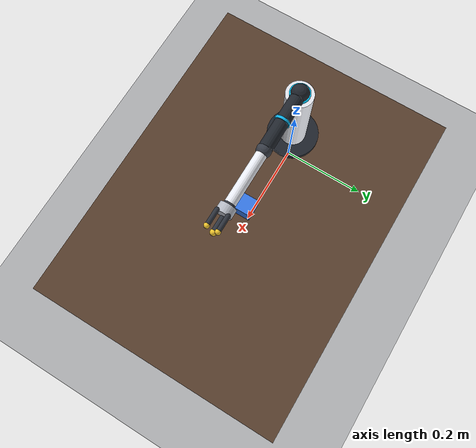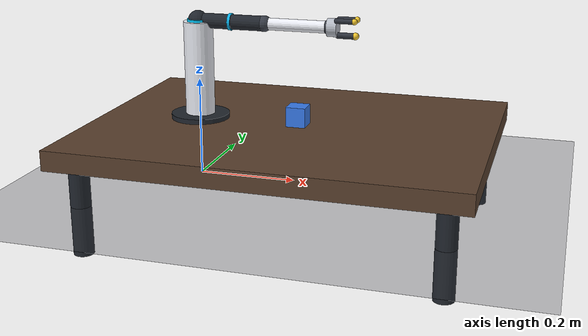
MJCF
<?xml version='1.0' encoding='utf-8'?>
<mujoco model="CARL Arm Standalone">
  <option timestep="0.005" gravity="0 0 -9.81" solver="Newton" integrator="implicit" />
  <compiler angle="radian" coordinate="local" inertiafromgeom="true" />

  <default>
    <geom contype="1" conaffinity="1" condim="3" friction="1.2 0.005 0.0001" />
    <joint damping="0.15" frictionloss="0.003" />
    <position ctrllimited="true" forcelimited="true" forcerange="-8.0 8.0" />
    <velocity forcelimited="true" forcerange="-3.0 3.0" />
  </default>

  <asset>
    <material name="shell_white" rgba="0.92 0.93 0.96 1.0" roughness="0.25" specular="0.5" />
    <material name="frame_dark" rgba="0.13 0.15 0.18 1.0" roughness="0.45" specular="0.3" />
    <material name="spine_segment" rgba="0.22 0.24 0.28 1.0" roughness="0.35" />
    <material name="joint_ring" rgba="0.00 0.78 0.98 1.0" emission="1.0" />
    <material name="accent_cyan" rgba="0.05 0.70 0.92 1.0" emission="0.6" />

    <material name="palm_silver" rgba="0.72 0.74 0.78 1.0" roughness="0.25" specular="0.6" />
    <material name="finger_seg" rgba="0.18 0.20 0.24 1.0" roughness="0.4" />
    <material name="fingertip_gold" rgba="0.95 0.78 0.18 1.0" roughness="0.3" emission="0.15" />

    <material name="floor_mat" rgba="0.20 0.21 0.24 1.0" roughness="0.7" specular="0.15" />
    <material name="table_mat" rgba="0.35 0.25 0.18 1.0" roughness="0.8" />
    <material name="obj_blue" rgba="0.22 0.48 0.92 1.0" roughness="0.25" />
  </asset>

  <worldbody>
    <light name="key_sun" pos="2 1.5 5" dir="-0.25 -0.2 -1" diffuse="0.92 0.90 0.88" castshadow="true" />
    <light name="fill_cool" pos="-2 -1 3.5" dir="0.3 0.15 -1" diffuse="0.35 0.40 0.50" castshadow="false" />
    <geom name="floor" type="plane" size="6 6 0.1" material="floor_mat" />

    <!-- Clean Lab Bench -->
    <body name="lab_bench" pos="0.2 0 0.1">
      <geom name="bench_top" type="box" size="0.4 0.3 0.02" material="table_mat" contype="1" conaffinity="1" />
      <geom name="bench_leg1" type="cylinder" size="0.02 0.1" pos="0.35 0.25 -0.1" material="frame_dark" />
      <geom name="bench_leg2" type="cylinder" size="0.02 0.1" pos="-0.35 0.25 -0.1" material="frame_dark" />
      <geom name="bench_leg3" type="cylinder" size="0.02 0.1" pos="0.35 -0.25 -0.1" material="frame_dark" />
      <geom name="bench_leg4" type="cylinder" size="0.02 0.1" pos="-0.35 -0.25 -0.1" material="frame_dark" />
    </body>

    <!-- Arm Mount Base -->
    <body name="arm_base_plate" pos="0 0 0.12">
      <geom name="base_plate" type="cylinder" size="0.06 0.01" material="frame_dark" contype="0" conaffinity="0" />
      <geom name="base_pillar" type="cylinder" size="0.03 0.10" pos="0 0 0.10" material="shell_white" contype="0" conaffinity="0" />

      <!--                   LEFT ARM (8 DOF)                     -->
      <!-- Mounted exactly where spine_3 would be to maintain kinematics -->
      <body name="shoulder_mount_L" pos="0 0 0.202">
        <joint name="shoulder_yaw_L" type="hinge" axis="0 0 1" range="-0.3 2.2" damping="2.5" />
        <geom type="sphere" size="0.020" material="frame_dark" mass="0.02" contype="2" conaffinity="5" />
        <geom type="cylinder" size="0.022 0.003" material="joint_ring" contype="0" conaffinity="0" />

        <body name="upper_arm_L" pos="0 0 0">
          <joint name="shoulder_pitch_L" type="hinge" axis="0 1 0" range="-2.4 2.4" damping="2.5" />
          <geom name="upperarm_L" type="capsule" fromto="0 0 0  0.14 0 0" size="0.015"
                material="frame_dark" mass="0.10" contype="2" conaffinity="5" />
          <!-- Bicep accent -->
          <geom type="cylinder" size="0.017 0.003" pos="0.07 0 0" euler="0 1.5708 0"
                material="accent_cyan" contype="0" conaffinity="0" />

          <body name="forearm_L" pos="0.14 0 0">
            <joint name="elbow_L" type="hinge" axis="0 1 0" range="-2.8 0" damping="2.0" />
            <geom type="sphere" size="0.016" material="spine_segment" mass="0.01" contype="2" conaffinity="5" />
            <geom name="forearm_L_geom" type="capsule" fromto="0 0 0  0.13 0 0" size="0.012"
                  material="shell_white" mass="0.07" contype="2" conaffinity="5" />

            <!-- === WRIST + HAND === -->
            <body name="wrist_L" pos="0.13 0 0">
              <joint name="wrist_roll_L" type="hinge" axis="1 0 0" range="-1.57 1.57" damping="1.0" />
              <geom type="sphere" size="0.010" material="spine_segment" mass="0.008" contype="0" conaffinity="0" />

              <body name="wrist_flex_L" pos="0 0 0">
                <joint name="wrist_pitch_L" type="hinge" axis="0 1 0" range="-1.3 1.3" damping="1.0" />
                <geom type="sphere" size="0.013" material="spine_segment" contype="0" conaffinity="0" />

                <!-- Sleek Cylindrical Palm Base -->
                <geom name="palm_L" type="cylinder" size="0.018 0.01" pos="0.01 0 0" euler="0 1.5708 0"
                      material="palm_silver" mass="0.025" contype="2" conaffinity="5" friction="2.0 0.01 0.001" />

                <!-- ─── Thumb (Bottom Center, points forward, curls UP) ─── -->
                <body name="thumb_L" pos="0.02 0 -0.015">
                  <joint name="thumb_L_knuckle" type="hinge" axis="0 1 0" range="-0.2 1.4" damping="0.6" />
                  <geom type="capsule" fromto="0 0 0  0.035 0 0" size="0.006"
                        material="finger_seg" mass="0.008" contype="2" conaffinity="5" friction="2.0 0.01 0.001" />
                  <geom name="thumb_L_tip" type="sphere" size="0.007" pos="0.035 0 0"
                        material="fingertip_gold" mass="0.003" contype="2" conaffinity="5" friction="2.5 0.01 0.001" />
                  <site name="touch_thumb_L" pos="0.035 0 0" size="0.007" rgba="1 0.3 0 0.25" />
                </body>

                <!-- ─── Index Finger (Top Left, points forward, curls DOWN) ─── -->
                <body name="index_L" pos="0.02 0.012 0.015">
                  <joint name="index_L_knuckle" type="hinge" axis="0 1 0" range="-1.4 0.2" damping="0.6" />
                  <geom type="capsule" fromto="0 0 0  0.035 0 0" size="0.005"
                        material="finger_seg" mass="0.006" contype="2" conaffinity="5" friction="2.0 0.01 0.001" />
                  <geom name="index_L_tip" type="sphere" size="0.006" pos="0.035 0 0"
                        material="fingertip_gold" mass="0.003" contype="2" conaffinity="5" friction="2.5 0.01 0.001" />
                  <site name="touch_index_L" pos="0.035 0 0" size="0.006" rgba="1 0.3 0 0.25" />
                </body>

                <!-- ─── Middle Finger (Top Right, points forward, curls DOWN) ─── -->
                <body name="middle_L" pos="0.02 -0.012 0.015">
                  <joint name="middle_L_knuckle" type="hinge" axis="0 1 0" range="-1.4 0.2" damping="0.6" />
                  <geom type="capsule" fromto="0 0 0  0.035 0 0" size="0.005"
                        material="finger_seg" mass="0.006" contype="2" conaffinity="5" friction="2.0 0.01 0.001" />
                  <geom name="middle_L_tip" type="sphere" size="0.006" pos="0.035 0 0"
                        material="fingertip_gold" mass="0.003" contype="2" conaffinity="5" friction="2.5 0.01 0.001" />
                  <site name="touch_middle_L" pos="0.035 0 0" size="0.006" rgba="1 0.3 0 0.25" />
                </body>

                <!-- ─── Grip centre site (midpoint of 3 fingertips, invisible) ─── -->
                <site name="tip_site" pos="0.055 0 0" size="0.004" rgba="0 0 0 0" />
              </body>
            </body>
          </body>
        </body>
      </body>
    </body>

    <!-- Target Cube (resting on the lab bench) -->
    <body name="obj_cube_0" pos="0.21 0 0.14">
      <freejoint name="fj_cube_0" />
      <geom name="gcube_0" type="box" size="0.020 0.020 0.020" mass="0.3"
            material="obj_blue" contype="4" conaffinity="13" friction="1.8 0.01 0.002" />
    </body>

  </worldbody>

  <actuator>
    <!-- ── Left Arm (5 DOF positioning + 3 DOF fingers = 8 DOF) ── -->
    <position name="act_shoulder_yaw_L"   joint="shoulder_yaw_L"   kp="140.0" ctrlrange="-0.3 2.2" />
    <position name="act_shoulder_pitch_L" joint="shoulder_pitch_L" kp="140.0" ctrlrange="-2.4 2.4" />
    <position name="act_elbow_L"          joint="elbow_L"          kp="120.0" ctrlrange="-2.8 0" />
    <position name="act_wrist_roll_L"     joint="wrist_roll_L"     kp="60.0"  ctrlrange="-1.57 1.57" />
    <position name="act_wrist_pitch_L"    joint="wrist_pitch_L"    kp="60.0"  ctrlrange="-1.3 1.3" />
    <position name="act_thumb_L"          joint="thumb_L_knuckle"  kp="35.0"  ctrlrange="0 1.4" forcelimited="true" forcerange="-1.5 1.5" />
    <position name="act_index_L"          joint="index_L_knuckle"  kp="35.0"  ctrlrange="-1.4 0" forcelimited="true" forcerange="-1.5 1.5" />
    <position name="act_middle_L"         joint="middle_L_knuckle" kp="35.0"  ctrlrange="-1.4 0" forcelimited="true" forcerange="-1.5 1.5" />
  </actuator>

  <sensor>
    <touch name="touch_thumb_L_s"  site="touch_thumb_L" />
    <touch name="touch_index_L_s"  site="touch_index_L" />
    <touch name="touch_middle_L_s" site="touch_middle_L" />
  </sensor>

</mujoco>
